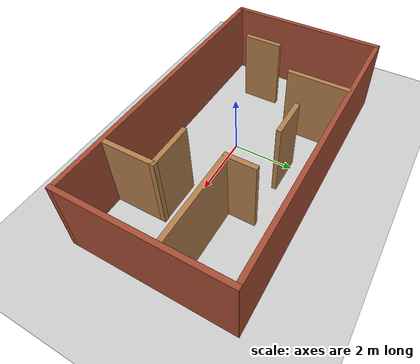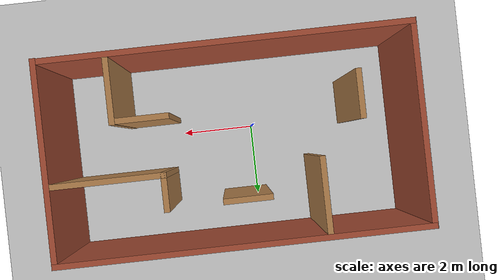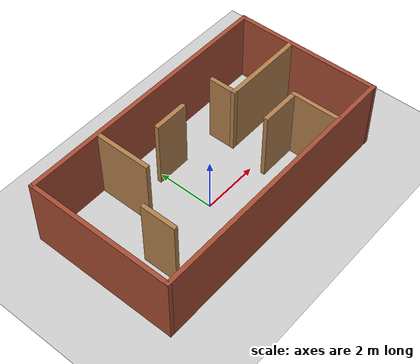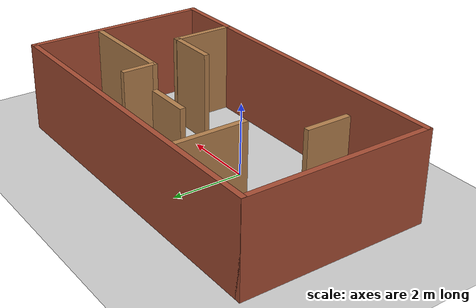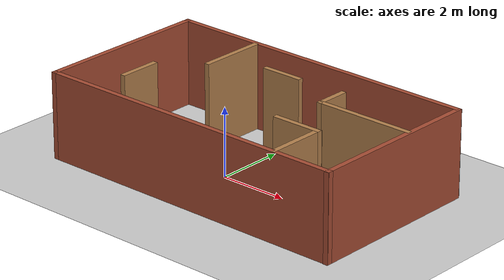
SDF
<?xml version="1.0"?>
<sdf version="1.6">
  <world name="default">

    <include>
      <uri>model://ground_plane</uri>
    </include>

    <include>
      <uri>model://sun</uri>
    </include>

    <scene>
      <shadows>false</shadows>
    </scene>

    <gui fullscreen='0'>
      <camera name='user_camera'>
        <pose frame=''>0.319654 -0.235002 9.29441 0 1.5138 0.009599</pose>
        <view_controller>orbit</view_controller>
        <projection_type>perspective</projection_type>
      </camera>
    </gui>

    <physics type="ode">
      <real_time_update_rate>1000.0</real_time_update_rate>
      <max_step_size>0.001</max_step_size>
      <real_time_factor>1</real_time_factor>
      <ode>
        <solver>
          <type>quick</type>
          <iters>150</iters>
          <precon_iters>0</precon_iters>
          <sor>1.400000</sor>
          <use_dynamic_moi_rescaling>1</use_dynamic_moi_rescaling>
        </solver>
        <constraints>
          <cfm>0.00001</cfm>
          <erp>0.2</erp>
          <contact_max_correcting_vel>2000.000000</contact_max_correcting_vel>
          <contact_surface_layer>0.01000</contact_surface_layer>
        </constraints>
      </ode>
    </physics>

    <model name="maze_1">
      <static>1</static>
      <include>
        <uri>model://maze_1</uri>
      </include>
    </model>

  </world>
</sdf>

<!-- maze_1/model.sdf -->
<sdf version='1.7'>
  <model name='maze_1'>
    <pose>0.576576 0.467308 0 0 -0 0</pose>
    <link name='Wall_10'>
      <collision name='Wall_10_Collision'>
        <geometry>
          <box>
            <size>9.5955 0.15 2.5</size>
          </box>
        </geometry>
        <pose>0 0 1.25 0 -0 0</pose>
      </collision>
      <visual name='Wall_10_Visual'>
        <pose>0 0 1.25 0 -0 0</pose>
        <geometry>
          <box>
            <size>9.5955 0.15 2.5</size>
          </box>
        </geometry>
        <material>
          <script>
            <uri>file://media/materials/scripts/gazebo.material</uri>
            <name>Gazebo/Bricks</name>
          </script>
          <ambient>1 1 1 1</ambient>
        </material>
        <meta>
          <layer>0</layer>
        </meta>
      </visual>
      <pose>0.00575 2.55575 0 0 -0 0</pose>
    </link>
    <link name='Wall_11'>
      <collision name='Wall_11_Collision'>
        <geometry>
          <box>
            <size>5.25 0.15 2.5</size>
          </box>
        </geometry>
        <pose>0 0 1.25 0 -0 0</pose>
      </collision>
      <visual name='Wall_11_Visual'>
        <pose>0 0 1.25 0 -0 0</pose>
        <geometry>
          <box>
            <size>5.25 0.15 2.5</size>
          </box>
        </geometry>
        <material>
          <script>
            <uri>file://media/materials/scripts/gazebo.material</uri>
            <name>Gazebo/Bricks</name>
          </script>
          <ambient>1 1 1 1</ambient>
        </material>
        <meta>
          <layer>0</layer>
        </meta>
      </visual>
      <pose>4.7285 -0.00575 0 0 -0 -1.5708</pose>
    </link>
    <link name='Wall_12'>
      <collision name='Wall_12_Collision'>
        <geometry>
          <box>
            <size>9.5955 0.15 2.5</size>
          </box>
        </geometry>
        <pose>0 0 1.25 0 -0 0</pose>
      </collision>
      <visual name='Wall_12_Visual'>
        <pose>0 0 1.25 0 -0 0</pose>
        <geometry>
          <box>
            <size>9.5955 0.15 2.5</size>
          </box>
        </geometry>
        <material>
          <script>
            <uri>file://media/materials/scripts/gazebo.material</uri>
            <name>Gazebo/Bricks</name>
          </script>
          <ambient>1 1 1 1</ambient>
        </material>
        <meta>
          <layer>0</layer>
        </meta>
      </visual>
      <pose>0.00575 -2.54425 0 0 -0 3.14159</pose>
    </link>
    <link name='Wall_15'>
      <collision name='Wall_15_Collision'>
        <geometry>
          <box>
            <size>2 0.15 2.5</size>
          </box>
        </geometry>
        <pose>0 0 1.25 0 -0 0</pose>
      </collision>
      <visual name='Wall_15_Visual'>
        <pose>0 0 1.25 0 -0 0</pose>
        <geometry>
          <box>
            <size>2 0.15 2.5</size>
          </box>
        </geometry>
        <material>
          <script>
            <uri>file://media/materials/scripts/gazebo.material</uri>
            <name>Gazebo/Wood</name>
          </script>
          <ambient>1 1 1 1</ambient>
        </material>
        <meta>
          <layer>0</layer>
        </meta>
      </visual>
      <pose>-2.13913 1.53634 0 0 -0 -1.5708</pose>
    </link>
    <link name='Wall_17'>
      <collision name='Wall_17_Collision'>
        <geometry>
          <box>
            <size>1.8245 0.15 2.5</size>
          </box>
        </geometry>
        <pose>0 0 1.25 0 -0 0</pose>
      </collision>
      <visual name='Wall_17_Visual'>
        <pose>0 0 1.25 0 -0 0</pose>
        <geometry>
          <box>
            <size>1.8245 0.15 2.5</size>
          </box>
        </geometry>
        <material>
          <script>
            <uri>file://media/materials/scripts/gazebo.material</uri>
            <name>Gazebo/Wood</name>
          </script>
          <ambient>1 1 1 1</ambient>
        </material>
        <meta>
          <layer>0</layer>
        </meta>
      </visual>
      <pose>2.94387 -1.69241 0 0 -0 1.5708</pose>
    </link>
    <link name='Wall_18'>
      <collision name='Wall_18_Collision'>
        <geometry>
          <box>
            <size>1.5 0.15 2.5</size>
          </box>
        </geometry>
        <pose>0 0 1.25 0 -0 0</pose>
      </collision>
      <visual name='Wall_18_Visual'>
        <pose>0 0 1.25 0 -0 0</pose>
        <geometry>
          <box>
            <size>1.5 0.15 2.5</size>
          </box>
        </geometry>
        <material>
          <script>
            <uri>file://media/materials/scripts/gazebo.material</uri>
            <name>Gazebo/Wood</name>
          </script>
          <ambient>1 1 1 1</ambient>
        </material>
        <meta>
          <layer>0</layer>
        </meta>
      </visual>
      <pose>2.26887 -0.866657 0 0 -0 3.14159</pose>
    </link>
    <link name='Wall_20'>
      <collision name='Wall_20_Collision'>
        <geometry>
          <box>
            <size>1 0.15 2.5</size>
          </box>
        </geometry>
        <pose>0 0 1.25 0 -0 0</pose>
      </collision>
      <visual name='Wall_20_Visual'>
        <pose>0 0 1.25 0 -0 0</pose>
        <geometry>
          <box>
            <size>1 0.15 2.5</size>
          </box>
        </geometry>
        <material>
          <script>
            <uri>file://media/materials/scripts/gazebo.material</uri>
            <name>Gazebo/Wood</name>
          </script>
          <ambient>1 1 1 1</ambient>
        </material>
        <meta>
          <layer>0</layer>
        </meta>
      </visual>
      <pose>1.81687 1.01184 0 0 -0 1.5708</pose>
    </link>
    <link name='Wall_22'>
      <collision name='Wall_22_Collision'>
        <geometry>
          <box>
            <size>1.25 0.15 2.5</size>
          </box>
        </geometry>
        <pose>0 0 1.25 0 -0 0</pose>
      </collision>
      <visual name='Wall_22_Visual'>
        <pose>0 0 1.25 0 -0 0</pose>
        <geometry>
          <box>
            <size>1.25 0.15 2.5</size>
          </box>
        </geometry>
        <material>
          <script>
            <uri>file://media/materials/scripts/gazebo.material</uri>
            <name>Gazebo/Wood</name>
          </script>
          <ambient>1 1 1 1</ambient>
        </material>
        <meta>
          <layer>0</layer>
        </meta>
      </visual>
      <pose>-0.209131 1.40334 0 0 -0 0</pose>
    </link>
    <link name='Wall_24'>
      <collision name='Wall_24_Collision'>
        <geometry>
          <box>
            <size>1.25 0.15 2.5</size>
          </box>
        </geometry>
        <pose>0 0 1.25 0 -0 0</pose>
      </collision>
      <visual name='Wall_24_Visual'>
        <pose>0 0 1.25 0 -0 0</pose>
        <geometry>
          <box>
            <size>1.25 0.15 2.5</size>
          </box>
        </geometry>
        <material>
          <script>
            <uri>file://media/materials/scripts/gazebo.material</uri>
            <name>Gazebo/Wood</name>
          </script>
          <ambient>1 1 1 1</ambient>
        </material>
        <meta>
          <layer>0</layer>
        </meta>
      </visual>
      <pose>-3.25463 -0.898657 0 0 -0 1.5708</pose>
    </link>
    <link name='Wall_26'>
      <collision name='Wall_26_Collision'>
        <geometry>
          <box>
            <size>3 0.15 2.5</size>
          </box>
        </geometry>
        <pose>0 0 1.25 0 -0 0</pose>
      </collision>
      <visual name='Wall_26_Visual'>
        <pose>0 0 1.25 0 -0 0</pose>
        <geometry>
          <box>
            <size>3 0.15 2.5</size>
          </box>
        </geometry>
        <material>
          <script>
            <uri>file://media/materials/scripts/gazebo.material</uri>
            <name>Gazebo/Wood</name>
          </script>
          <ambient>1 1 1 1</ambient>
        </material>
        <meta>
          <layer>0</layer>
        </meta>
      </visual>
      <pose>3.24187 0.586843 0 0 -0 0</pose>
    </link>
    <link name='Wall_7'>
      <collision name='Wall_7_Collision'>
        <geometry>
          <box>
            <size>5.25 0.15 2.5</size>
          </box>
        </geometry>
        <pose>0 0 1.25 0 -0 0</pose>
      </collision>
      <visual name='Wall_7_Visual'>
        <pose>0 0 1.25 0 -0 0</pose>
        <geometry>
          <box>
            <size>5.25 0.15 2.5</size>
          </box>
        </geometry>
        <material>
          <script>
            <uri>file://media/materials/scripts/gazebo.material</uri>
            <name>Gazebo/Bricks</name>
          </script>
          <ambient>1 1 1 1</ambient>
        </material>
        <meta>
          <layer>0</layer>
        </meta>
      </visual>
      <pose>-4.7285 0.00575 0 0 -0 -1.5708</pose>
    </link>
    <static>1</static>
  </model>
</sdf>
